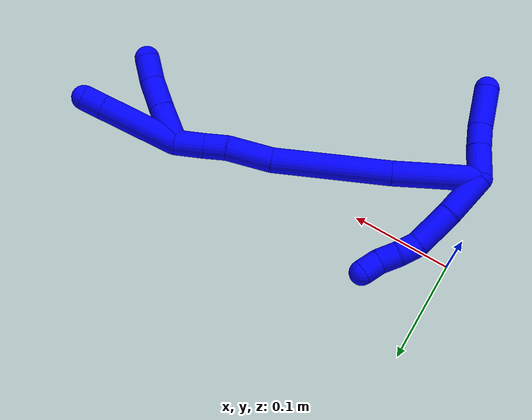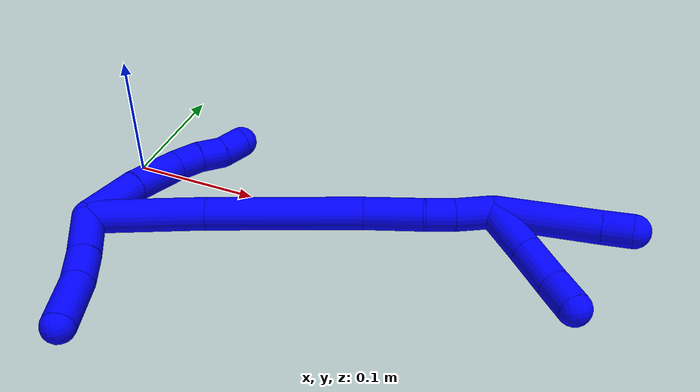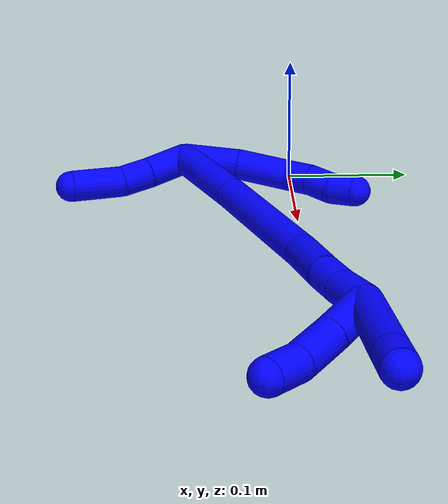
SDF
<sdf version="1.7">
 <world name="default">
  <model name="1">
   <static>0</static>
   <link name="1">
    <collision name="collision-cylinder-e_1_2_8">
     <pose>0.014616 0.011244 0.013679 -0.688008 0.690068 -0.256108</pose>
     <geometry><cylinder><radius>0.0125</radius><length>0.045919</length></cylinder></geometry>
     <surface>
      <friction><ode><mu>1.16</mu><mu2>1.16</mu2><slip1>0</slip1><slip2>0</slip2></ode></friction>
      <contact><ode><kp>1e+06</kp><kd>1</kd><max_vel>0</max_vel><min_depth>0.001</min_depth></ode></contact>
     </surface>
    </collision>
    <visual name="visual-cylinder-e_1_2_8">
     <pose>0.014616 0.011244 0.013679 -0.688008 0.690068 -0.256108</pose>
     <geometry><cylinder><radius>0.0125</radius><length>0.045919</length></cylinder></geometry>
     <material><ambient>0 0 1 1</ambient></material>
    </visual>
    <collision name="collision-cylinder-e_2_8_9">
     <pose>0.043731 0.030781 0.040834 -0.551676 0.741737 -0.219255</pose>
     <geometry><cylinder><radius>0.0125</radius><length>0.042924</length></cylinder></geometry>
     <surface>
      <friction><ode><mu>1.16</mu><mu2>1.16</mu2><slip1>0</slip1><slip2>0</slip2></ode></friction>
      <contact><ode><kp>1e+06</kp><kd>1</kd><max_vel>0</max_vel><min_depth>0.001</min_depth></ode></contact>
     </surface>
    </collision>
    <visual name="visual-cylinder-e_2_8_9">
     <pose>0.043731 0.030781 0.040834 -0.551676 0.741737 -0.219255</pose>
     <geometry><cylinder><radius>0.0125</radius><length>0.042924</length></cylinder></geometry>
     <material><ambient>0 0 1 1</ambient></material>
    </visual>
    <collision name="collision-cylinder-e_3_9_10">
     <pose>0.063075 0.042038 0.062973 -0.329646 0.48667 -0.082538</pose>
     <geometry><cylinder><radius>0.0125</radius><length>0.020718</length></cylinder></geometry>
     <surface>
      <friction><ode><mu>1.16</mu><mu2>1.16</mu2><slip1>0</slip1><slip2>0</slip2></ode></friction>
      <contact><ode><kp>1e+06</kp><kd>1</kd><max_vel>0</max_vel><min_depth>0.001</min_depth></ode></contact>
     </surface>
    </collision>
    <visual name="visual-cylinder-e_3_9_10">
     <pose>0.063075 0.042038 0.062973 -0.329646 0.48667 -0.082538</pose>
     <geometry><cylinder><radius>0.0125</radius><length>0.020718</length></cylinder></geometry>
     <material><ambient>0 0 1 1</ambient></material>
    </visual>
    <collision name="collision-cylinder-e_4_10_11">
     <pose>0.072833 0.04622 0.080473 -0.136974 0.503419 -0.035276</pose>
     <geometry><cylinder><radius>0.0125</radius><length>0.020368</length></cylinder></geometry>
     <surface>
      <friction><ode><mu>1.16</mu><mu2>1.16</mu2><slip1>0</slip1><slip2>0</slip2></ode></friction>
      <contact><ode><kp>1e+06</kp><kd>1</kd><max_vel>0</max_vel><min_depth>0.001</min_depth></ode></contact>
     </surface>
    </collision>
    <visual name="visual-cylinder-e_4_10_11">
     <pose>0.072833 0.04622 0.080473 -0.136974 0.503419 -0.035276</pose>
     <geometry><cylinder><radius>0.0125</radius><length>0.020368</length></cylinder></geometry>
     <material><ambient>0 0 1 1</ambient></material>
    </visual>
    <collision name="collision-cylinder-e_5_11_6">
     <pose>0.082533 0.051454 0.097163 -0.472641 0.497314 -0.122142</pose>
     <geometry><cylinder><radius>0.0125</radius><length>0.02007</length></cylinder></geometry>
     <surface>
      <friction><ode><mu>1.16</mu><mu2>1.16</mu2><slip1>0</slip1><slip2>0</slip2></ode></friction>
      <contact><ode><kp>1e+06</kp><kd>1</kd><max_vel>0</max_vel><min_depth>0.001</min_depth></ode></contact>
     </surface>
    </collision>
    <visual name="visual-cylinder-e_5_11_6">
     <pose>0.082533 0.051454 0.097163 -0.472641 0.497314 -0.122142</pose>
     <geometry><cylinder><radius>0.0125</radius><length>0.02007</length></cylinder></geometry>
     <material><ambient>0 0 1 1</ambient></material>
    </visual>
    <collision name="collision-cylinder-e_1_2_12">
     <pose>-0.008314 -0.014836 -0.000407 1.59819 -0.510645 -0.524196</pose>
     <geometry><cylinder><radius>0.0125</radius><length>0.034023</length></cylinder></geometry>
     <surface>
      <friction><ode><mu>1.16</mu><mu2>1.16</mu2><slip1>0</slip1><slip2>0</slip2></ode></friction>
      <contact><ode><kp>1e+06</kp><kd>1</kd><max_vel>0</max_vel><min_depth>0.001</min_depth></ode></contact>
     </surface>
    </collision>
    <visual name="visual-cylinder-e_1_2_12">
     <pose>-0.008314 -0.014836 -0.000407 1.59819 -0.510645 -0.524196</pose>
     <geometry><cylinder><radius>0.0125</radius><length>0.034023</length></cylinder></geometry>
     <material><ambient>0 0 1 1</ambient></material>
    </visual>
    <collision name="collision-cylinder-e_2_12_13">
     <pose>-0.022901 -0.039755 -0.001883 1.6765 -0.554008 -0.612277</pose>
     <geometry><cylinder><radius>0.0125</radius><length>0.023846</length></cylinder></geometry>
     <surface>
      <friction><ode><mu>1.16</mu><mu2>1.16</mu2><slip1>0</slip1><slip2>0</slip2></ode></friction>
      <contact><ode><kp>1e+06</kp><kd>1</kd><max_vel>0</max_vel><min_depth>0.001</min_depth></ode></contact>
     </surface>
    </collision>
    <visual name="visual-cylinder-e_2_12_13">
     <pose>-0.022901 -0.039755 -0.001883 1.6765 -0.554008 -0.612277</pose>
     <geometry><cylinder><radius>0.0125</radius><length>0.023846</length></cylinder></geometry>
     <material><ambient>0 0 1 1</ambient></material>
    </visual>
    <collision name="collision-cylinder-e_3_13_5">
     <pose>-0.043646 -0.06491 -0.005625 1.74627 -0.757384 -0.886323</pose>
     <geometry><cylinder><radius>0.0125</radius><length>0.042131</length></cylinder></geometry>
     <surface>
      <friction><ode><mu>1.16</mu><mu2>1.16</mu2><slip1>0</slip1><slip2>0</slip2></ode></friction>
      <contact><ode><kp>1e+06</kp><kd>1</kd><max_vel>0</max_vel><min_depth>0.001</min_depth></ode></contact>
     </surface>
    </collision>
    <visual name="visual-cylinder-e_3_13_5">
     <pose>-0.043646 -0.06491 -0.005625 1.74627 -0.757384 -0.886323</pose>
     <geometry><cylinder><radius>0.0125</radius><length>0.042131</length></cylinder></geometry>
     <material><ambient>0 0 1 1</ambient></material>
    </visual>
    <collision name="collision-cylinder-e_1_2_14">
     <pose>0.006854 -0.005976 0.041799 0.142007 0.16091 0.011469</pose>
     <geometry><cylinder><radius>0.0125</radius><length>0.085553</length></cylinder></geometry>
     <surface>
      <friction><ode><mu>1.16</mu><mu2>1.16</mu2><slip1>0</slip1><slip2>0</slip2></ode></friction>
      <contact><ode><kp>1e+06</kp><kd>1</kd><max_vel>0</max_vel><min_depth>0.001</min_depth></ode></contact>
     </surface>
    </collision>
    <visual name="visual-cylinder-e_1_2_14">
     <pose>0.006854 -0.005976 0.041799 0.142007 0.16091 0.011469</pose>
     <geometry><cylinder><radius>0.0125</radius><length>0.085553</length></cylinder></geometry>
     <material><ambient>0 0 1 1</ambient></material>
    </visual>
    <collision name="collision-cylinder-e_2_14_15">
     <pose>0.020891 -0.021881 0.141091 0.17102 0.12251 0.010514</pose>
     <geometry><cylinder><radius>0.0125</radius><length>0.117569</length></cylinder></geometry>
     <surface>
      <friction><ode><mu>1.16</mu><mu2>1.16</mu2><slip1>0</slip1><slip2>0</slip2></ode></friction>
      <contact><ode><kp>1e+06</kp><kd>1</kd><max_vel>0</max_vel><min_depth>0.001</min_depth></ode></contact>
     </surface>
    </collision>
    <visual name="visual-cylinder-e_2_14_15">
     <pose>0.020891 -0.021881 0.141091 0.17102 0.12251 0.010514</pose>
     <geometry><cylinder><radius>0.0125</radius><length>0.117569</length></cylinder></geometry>
     <material><ambient>0 0 1 1</ambient></material>
    </visual>
    <collision name="collision-cylinder-e_3_15_16">
     <pose>0.027355 -0.03666 0.220608 0.216717 -0.031887 -0.003469</pose>
     <geometry><cylinder><radius>0.0125</radius><length>0.045125</length></cylinder></geometry>
     <surface>
      <friction><ode><mu>1.16</mu><mu2>1.16</mu2><slip1>0</slip1><slip2>0</slip2></ode></friction>
      <contact><ode><kp>1e+06</kp><kd>1</kd><max_vel>0</max_vel><min_depth>0.001</min_depth></ode></contact>
     </surface>
    </collision>
    <visual name="visual-cylinder-e_3_15_16">
     <pose>0.027355 -0.03666 0.220608 0.216717 -0.031887 -0.003469</pose>
     <geometry><cylinder><radius>0.0125</radius><length>0.045125</length></cylinder></geometry>
     <material><ambient>0 0 1 1</ambient></material>
    </visual>
    <collision name="collision-cylinder-e_4_16_17">
     <pose>0.02829 -0.04347 0.253623 0.176606 0.147108 0.013047</pose>
     <geometry><cylinder><radius>0.0125</radius><length>0.022574</length></cylinder></geometry>
     <surface>
      <friction><ode><mu>1.16</mu><mu2>1.16</mu2><slip1>0</slip1><slip2>0</slip2></ode></friction>
      <contact><ode><kp>1e+06</kp><kd>1</kd><max_vel>0</max_vel><min_depth>0.001</min_depth></ode></contact>
     </surface>
    </collision>
    <visual name="visual-cylinder-e_4_16_17">
     <pose>0.02829 -0.04347 0.253623 0.176606 0.147108 0.013047</pose>
     <geometry><cylinder><radius>0.0125</radius><length>0.022574</length></cylinder></geometry>
     <material><ambient>0 0 1 1</ambient></material>
    </visual>
    <collision name="collision-cylinder-e_5_17_1">
     <pose>0.031026 -0.046963 0.279082 0.10539 0.074218 0.003916</pose>
     <geometry><cylinder><radius>0.0125</radius><length>0.029178</length></cylinder></geometry>
     <surface>
      <friction><ode><mu>1.16</mu><mu2>1.16</mu2><slip1>0</slip1><slip2>0</slip2></ode></friction>
      <contact><ode><kp>1e+06</kp><kd>1</kd><max_vel>0</max_vel><min_depth>0.001</min_depth></ode></contact>
     </surface>
    </collision>
    <visual name="visual-cylinder-e_5_17_1">
     <pose>0.031026 -0.046963 0.279082 0.10539 0.074218 0.003916</pose>
     <geometry><cylinder><radius>0.0125</radius><length>0.029178</length></cylinder></geometry>
     <material><ambient>0 0 1 1</ambient></material>
    </visual>
    <collision name="collision-cylinder-e_1_1_18">
     <pose>0.023995 -0.065113 0.301358 1.13161 -0.416066 -0.266519</pose>
     <geometry><cylinder><radius>0.0125</radius><length>0.04015</length></cylinder></geometry>
     <surface>
      <friction><ode><mu>1.16</mu><mu2>1.16</mu2><slip1>0</slip1><slip2>0</slip2></ode></friction>
      <contact><ode><kp>1e+06</kp><kd>1</kd><max_vel>0</max_vel><min_depth>0.001</min_depth></ode></contact>
     </surface>
    </collision>
    <visual name="visual-cylinder-e_1_1_18">
     <pose>0.023995 -0.065113 0.301358 1.13161 -0.416066 -0.266519</pose>
     <geometry><cylinder><radius>0.0125</radius><length>0.04015</length></cylinder></geometry>
     <material><ambient>0 0 1 1</ambient></material>
    </visual>
    <collision name="collision-cylinder-e_2_18_19">
     <pose>0.008693 -0.095507 0.315276 1.1533 -0.445065 -0.292244</pose>
     <geometry><cylinder><radius>0.0125</radius><length>0.03339</length></cylinder></geometry>
     <surface>
      <friction><ode><mu>1.16</mu><mu2>1.16</mu2><slip1>0</slip1><slip2>0</slip2></ode></friction>
      <contact><ode><kp>1e+06</kp><kd>1</kd><max_vel>0</max_vel><min_depth>0.001</min_depth></ode></contact>
     </surface>
    </collision>
    <visual name="visual-cylinder-e_2_18_19">
     <pose>0.008693 -0.095507 0.315276 1.1533 -0.445065 -0.292244</pose>
     <geometry><cylinder><radius>0.0125</radius><length>0.03339</length></cylinder></geometry>
     <material><ambient>0 0 1 1</ambient></material>
    </visual>
    <collision name="collision-cylinder-e_3_19_4">
     <pose>-0.006579 -0.118935 0.325442 1.173 -0.657502 -0.445828</pose>
     <geometry><cylinder><radius>0.0125</radius><length>0.02646</length></cylinder></geometry>
     <surface>
      <friction><ode><mu>1.16</mu><mu2>1.16</mu2><slip1>0</slip1><slip2>0</slip2></ode></friction>
      <contact><ode><kp>1e+06</kp><kd>1</kd><max_vel>0</max_vel><min_depth>0.001</min_depth></ode></contact>
     </surface>
    </collision>
    <visual name="visual-cylinder-e_3_19_4">
     <pose>-0.006579 -0.118935 0.325442 1.173 -0.657502 -0.445828</pose>
     <geometry><cylinder><radius>0.0125</radius><length>0.02646</length></cylinder></geometry>
     <material><ambient>0 0 1 1</ambient></material>
    </visual>
    <collision name="collision-cylinder-e_1_1_20">
     <pose>0.025533 -0.061982 0.329623 0.357828 -0.169095 -0.030651</pose>
     <geometry><cylinder><radius>0.0125</radius><length>0.078139</length></cylinder></geometry>
     <surface>
      <friction><ode><mu>1.16</mu><mu2>1.16</mu2><slip1>0</slip1><slip2>0</slip2></ode></friction>
      <contact><ode><kp>1e+06</kp><kd>1</kd><max_vel>0</max_vel><min_depth>0.001</min_depth></ode></contact>
     </surface>
    </collision>
    <visual name="visual-cylinder-e_1_1_20">
     <pose>0.025533 -0.061982 0.329623 0.357828 -0.169095 -0.030651</pose>
     <geometry><cylinder><radius>0.0125</radius><length>0.078139</length></cylinder></geometry>
     <material><ambient>0 0 1 1</ambient></material>
    </visual>
    <collision name="collision-cylinder-e_2_20_3">
     <pose>0.016956 -0.079102 0.375809 0.344811 -0.184165 -0.032158</pose>
     <geometry><cylinder><radius>0.0125</radius><length>0.021861</length></cylinder></geometry>
     <surface>
      <friction><ode><mu>1.16</mu><mu2>1.16</mu2><slip1>0</slip1><slip2>0</slip2></ode></friction>
      <contact><ode><kp>1e+06</kp><kd>1</kd><max_vel>0</max_vel><min_depth>0.001</min_depth></ode></contact>
     </surface>
    </collision>
    <visual name="visual-cylinder-e_2_20_3">
     <pose>0.016956 -0.079102 0.375809 0.344811 -0.184165 -0.032158</pose>
     <geometry><cylinder><radius>0.0125</radius><length>0.021861</length></cylinder></geometry>
     <material><ambient>0 0 1 1</ambient></material>
    </visual>
    <collision name="collision-sphere-3">
     <pose>0.014955 -0.082735 0.385923 0 -0 0</pose>
     <geometry><sphere><radius>0.0125</radius></sphere></geometry>
     <surface>
      <friction><ode><mu>1.16</mu><mu2>1.16</mu2><slip1>0</slip1><slip2>0</slip2></ode></friction>
      <contact><ode><kp>1e+06</kp><kd>1</kd><max_vel>0</max_vel><min_depth>0.001</min_depth></ode></contact>
     </surface>
    </collision>
    <visual name="visual-sphere-3">
     <pose>0.014955 -0.082735 0.385923 0 -0 0</pose>
     <geometry><sphere><radius>0.0125</radius></sphere></geometry>
     <material><ambient>0 0 1 1</ambient></material>
    </visual>
    <collision name="collision-sphere-20">
     <pose>0.018958 -0.07547 0.365696 0 -0 0</pose>
     <geometry><sphere><radius>0.0125</radius></sphere></geometry>
     <surface>
      <friction><ode><mu>1.16</mu><mu2>1.16</mu2><slip1>0</slip1><slip2>0</slip2></ode></friction>
      <contact><ode><kp>1e+06</kp><kd>1</kd><max_vel>0</max_vel><min_depth>0.001</min_depth></ode></contact>
     </surface>
    </collision>
    <visual name="visual-sphere-20">
     <pose>0.018958 -0.07547 0.365696 0 -0 0</pose>
     <geometry><sphere><radius>0.0125</radius></sphere></geometry>
     <material><ambient>0 0 1 1</ambient></material>
    </visual>
    <collision name="collision-sphere-4">
     <pose>-0.014665 -0.128589 0.329499 0 -0 0</pose>
     <geometry><sphere><radius>0.0125</radius></sphere></geometry>
     <surface>
      <friction><ode><mu>1.16</mu><mu2>1.16</mu2><slip1>0</slip1><slip2>0</slip2></ode></friction>
      <contact><ode><kp>1e+06</kp><kd>1</kd><max_vel>0</max_vel><min_depth>0.001</min_depth></ode></contact>
     </surface>
    </collision>
    <visual name="visual-sphere-4">
     <pose>-0.014665 -0.128589 0.329499 0 -0 0</pose>
     <geometry><sphere><radius>0.0125</radius></sphere></geometry>
     <material><ambient>0 0 1 1</ambient></material>
    </visual>
    <collision name="collision-sphere-6">
     <pose>0.087321 0.055469 0.105016 0 -0 0</pose>
     <geometry><sphere><radius>0.0125</radius></sphere></geometry>
     <surface>
      <friction><ode><mu>1.16</mu><mu2>1.16</mu2><slip1>0</slip1><slip2>0</slip2></ode></friction>
      <contact><ode><kp>1e+06</kp><kd>1</kd><max_vel>0</max_vel><min_depth>0.001</min_depth></ode></contact>
     </surface>
    </collision>
    <visual name="visual-sphere-6">
     <pose>0.087321 0.055469 0.105016 0 -0 0</pose>
     <geometry><sphere><radius>0.0125</radius></sphere></geometry>
     <material><ambient>0 0 1 1</ambient></material>
    </visual>
    <collision name="collision-sphere-11">
     <pose>0.077746 0.047439 0.08931 0 -0 0</pose>
     <geometry><sphere><radius>0.0125</radius></sphere></geometry>
     <surface>
      <friction><ode><mu>1.16</mu><mu2>1.16</mu2><slip1>0</slip1><slip2>0</slip2></ode></friction>
      <contact><ode><kp>1e+06</kp><kd>1</kd><max_vel>0</max_vel><min_depth>0.001</min_depth></ode></contact>
     </surface>
    </collision>
    <visual name="visual-sphere-11">
     <pose>0.077746 0.047439 0.08931 0 -0 0</pose>
     <geometry><sphere><radius>0.0125</radius></sphere></geometry>
     <material><ambient>0 0 1 1</ambient></material>
    </visual>
    <collision name="collision-sphere-10">
     <pose>0.06792 0.045002 0.071637 0 -0 0</pose>
     <geometry><sphere><radius>0.0125</radius></sphere></geometry>
     <surface>
      <friction><ode><mu>1.16</mu><mu2>1.16</mu2><slip1>0</slip1><slip2>0</slip2></ode></friction>
      <contact><ode><kp>1e+06</kp><kd>1</kd><max_vel>0</max_vel><min_depth>0.001</min_depth></ode></contact>
     </surface>
    </collision>
    <visual name="visual-sphere-10">
     <pose>0.06792 0.045002 0.071637 0 -0 0</pose>
     <geometry><sphere><radius>0.0125</radius></sphere></geometry>
     <material><ambient>0 0 1 1</ambient></material>
    </visual>
    <collision name="collision-sphere-9">
     <pose>0.05823 0.039075 0.05431 0 -0 0</pose>
     <geometry><sphere><radius>0.0125</radius></sphere></geometry>
     <surface>
      <friction><ode><mu>1.16</mu><mu2>1.16</mu2><slip1>0</slip1><slip2>0</slip2></ode></friction>
      <contact><ode><kp>1e+06</kp><kd>1</kd><max_vel>0</max_vel><min_depth>0.001</min_depth></ode></contact>
     </surface>
    </collision>
    <visual name="visual-sphere-9">
     <pose>0.05823 0.039075 0.05431 0 -0 0</pose>
     <geometry><sphere><radius>0.0125</radius></sphere></geometry>
     <material><ambient>0 0 1 1</ambient></material>
    </visual>
    <collision name="collision-sphere-2">
     <geometry><sphere><radius>0.0125</radius></sphere></geometry>
     <surface>
      <friction><ode><mu>1.16</mu><mu2>1.16</mu2><slip1>0</slip1><slip2>0</slip2></ode></friction>
      <contact><ode><kp>1e+06</kp><kd>1</kd><max_vel>0</max_vel><min_depth>0.001</min_depth></ode></contact>
     </surface>
    </collision>
    <visual name="visual-sphere-2">
     <geometry><sphere><radius>0.0125</radius></sphere></geometry>
     <material><ambient>0 0 1 1</ambient></material>
    </visual>
    <collision name="collision-sphere-19">
     <pose>0.001506 -0.109281 0.321386 0 -0 0</pose>
     <geometry><sphere><radius>0.0125</radius></sphere></geometry>
     <surface>
      <friction><ode><mu>1.16</mu><mu2>1.16</mu2><slip1>0</slip1><slip2>0</slip2></ode></friction>
      <contact><ode><kp>1e+06</kp><kd>1</kd><max_vel>0</max_vel><min_depth>0.001</min_depth></ode></contact>
     </surface>
    </collision>
    <visual name="visual-sphere-19">
     <pose>0.001506 -0.109281 0.321386 0 -0 0</pose>
     <geometry><sphere><radius>0.0125</radius></sphere></geometry>
     <material><ambient>0 0 1 1</ambient></material>
    </visual>
    <collision name="collision-sphere-8">
     <pose>0.029232 0.022487 0.027357 0 -0 0</pose>
     <geometry><sphere><radius>0.0125</radius></sphere></geometry>
     <surface>
      <friction><ode><mu>1.16</mu><mu2>1.16</mu2><slip1>0</slip1><slip2>0</slip2></ode></friction>
      <contact><ode><kp>1e+06</kp><kd>1</kd><max_vel>0</max_vel><min_depth>0.001</min_depth></ode></contact>
     </surface>
    </collision>
    <visual name="visual-sphere-8">
     <pose>0.029232 0.022487 0.027357 0 -0 0</pose>
     <geometry><sphere><radius>0.0125</radius></sphere></geometry>
     <material><ambient>0 0 1 1</ambient></material>
    </visual>
    <collision name="collision-sphere-12">
     <pose>-0.016629 -0.029672 -0.000813 0 -0 0</pose>
     <geometry><sphere><radius>0.0125</radius></sphere></geometry>
     <surface>
      <friction><ode><mu>1.16</mu><mu2>1.16</mu2><slip1>0</slip1><slip2>0</slip2></ode></friction>
      <contact><ode><kp>1e+06</kp><kd>1</kd><max_vel>0</max_vel><min_depth>0.001</min_depth></ode></contact>
     </surface>
    </collision>
    <visual name="visual-sphere-12">
     <pose>-0.016629 -0.029672 -0.000813 0 -0 0</pose>
     <geometry><sphere><radius>0.0125</radius></sphere></geometry>
     <material><ambient>0 0 1 1</ambient></material>
    </visual>
    <collision name="collision-sphere-13">
     <pose>-0.029174 -0.049838 -0.002953 0 -0 0</pose>
     <geometry><sphere><radius>0.0125</radius></sphere></geometry>
     <surface>
      <friction><ode><mu>1.16</mu><mu2>1.16</mu2><slip1>0</slip1><slip2>0</slip2></ode></friction>
      <contact><ode><kp>1e+06</kp><kd>1</kd><max_vel>0</max_vel><min_depth>0.001</min_depth></ode></contact>
     </surface>
    </collision>
    <visual name="visual-sphere-13">
     <pose>-0.029174 -0.049838 -0.002953 0 -0 0</pose>
     <geometry><sphere><radius>0.0125</radius></sphere></geometry>
     <material><ambient>0 0 1 1</ambient></material>
    </visual>
    <collision name="collision-sphere-5">
     <pose>-0.058119 -0.079981 -0.008297 0 -0 0</pose>
     <geometry><sphere><radius>0.0125</radius></sphere></geometry>
     <surface>
      <friction><ode><mu>1.16</mu><mu2>1.16</mu2><slip1>0</slip1><slip2>0</slip2></ode></friction>
      <contact><ode><kp>1e+06</kp><kd>1</kd><max_vel>0</max_vel><min_depth>0.001</min_depth></ode></contact>
     </surface>
    </collision>
    <visual name="visual-sphere-5">
     <pose>-0.058119 -0.079981 -0.008297 0 -0 0</pose>
     <geometry><sphere><radius>0.0125</radius></sphere></geometry>
     <material><ambient>0 0 1 1</ambient></material>
    </visual>
    <collision name="collision-sphere-14">
     <pose>0.013707 -0.011952 0.083598 0 -0 0</pose>
     <geometry><sphere><radius>0.0125</radius></sphere></geometry>
     <surface>
      <friction><ode><mu>1.16</mu><mu2>1.16</mu2><slip1>0</slip1><slip2>0</slip2></ode></friction>
      <contact><ode><kp>1e+06</kp><kd>1</kd><max_vel>0</max_vel><min_depth>0.001</min_depth></ode></contact>
     </surface>
    </collision>
    <visual name="visual-sphere-14">
     <pose>0.013707 -0.011952 0.083598 0 -0 0</pose>
     <geometry><sphere><radius>0.0125</radius></sphere></geometry>
     <material><ambient>0 0 1 1</ambient></material>
    </visual>
    <collision name="collision-sphere-15">
     <pose>0.028074 -0.031811 0.198584 0 -0 0</pose>
     <geometry><sphere><radius>0.0125</radius></sphere></geometry>
     <surface>
      <friction><ode><mu>1.16</mu><mu2>1.16</mu2><slip1>0</slip1><slip2>0</slip2></ode></friction>
      <contact><ode><kp>1e+06</kp><kd>1</kd><max_vel>0</max_vel><min_depth>0.001</min_depth></ode></contact>
     </surface>
    </collision>
    <visual name="visual-sphere-15">
     <pose>0.028074 -0.031811 0.198584 0 -0 0</pose>
     <geometry><sphere><radius>0.0125</radius></sphere></geometry>
     <material><ambient>0 0 1 1</ambient></material>
    </visual>
    <collision name="collision-sphere-16">
     <pose>0.026636 -0.041509 0.242631 0 -0 0</pose>
     <geometry><sphere><radius>0.0125</radius></sphere></geometry>
     <surface>
      <friction><ode><mu>1.16</mu><mu2>1.16</mu2><slip1>0</slip1><slip2>0</slip2></ode></friction>
      <contact><ode><kp>1e+06</kp><kd>1</kd><max_vel>0</max_vel><min_depth>0.001</min_depth></ode></contact>
     </surface>
    </collision>
    <visual name="visual-sphere-16">
     <pose>0.026636 -0.041509 0.242631 0 -0 0</pose>
     <geometry><sphere><radius>0.0125</radius></sphere></geometry>
     <material><ambient>0 0 1 1</ambient></material>
    </visual>
    <collision name="collision-sphere-17">
     <pose>0.029945 -0.045432 0.264614 0 -0 0</pose>
     <geometry><sphere><radius>0.0125</radius></sphere></geometry>
     <surface>
      <friction><ode><mu>1.16</mu><mu2>1.16</mu2><slip1>0</slip1><slip2>0</slip2></ode></friction>
      <contact><ode><kp>1e+06</kp><kd>1</kd><max_vel>0</max_vel><min_depth>0.001</min_depth></ode></contact>
     </surface>
    </collision>
    <visual name="visual-sphere-17">
     <pose>0.029945 -0.045432 0.264614 0 -0 0</pose>
     <geometry><sphere><radius>0.0125</radius></sphere></geometry>
     <material><ambient>0 0 1 1</ambient></material>
    </visual>
    <collision name="collision-sphere-1">
     <pose>0.032108 -0.048493 0.29355 0 -0 0</pose>
     <geometry><sphere><radius>0.0125</radius></sphere></geometry>
     <surface>
      <friction><ode><mu>1.16</mu><mu2>1.16</mu2><slip1>0</slip1><slip2>0</slip2></ode></friction>
      <contact><ode><kp>1e+06</kp><kd>1</kd><max_vel>0</max_vel><min_depth>0.001</min_depth></ode></contact>
     </surface>
    </collision>
    <visual name="visual-sphere-1">
     <pose>0.032108 -0.048493 0.29355 0 -0 0</pose>
     <geometry><sphere><radius>0.0125</radius></sphere></geometry>
     <material><ambient>0 0 1 1</ambient></material>
    </visual>
    <collision name="collision-sphere-18">
     <pose>0.015881 -0.081733 0.309166 0 -0 0</pose>
     <geometry><sphere><radius>0.0125</radius></sphere></geometry>
     <surface>
      <friction><ode><mu>1.16</mu><mu2>1.16</mu2><slip1>0</slip1><slip2>0</slip2></ode></friction>
      <contact><ode><kp>1e+06</kp><kd>1</kd><max_vel>0</max_vel><min_depth>0.001</min_depth></ode></contact>
     </surface>
    </collision>
    <visual name="visual-sphere-18">
     <pose>0.015881 -0.081733 0.309166 0 -0 0</pose>
     <geometry><sphere><radius>0.0125</radius></sphere></geometry>
     <material><ambient>0 0 1 1</ambient></material>
    </visual>
    <inertial>
     <pose>0.018124 -0.02949 0.154902 0 -0 0</pose>
     <mass>0.75</mass>
     <inertia>
      <ixx>0.000275</ixx>
      <ixy>0</ixy>
      <ixz>0</ixz>
      <iyy>0.000253</iyy>
      <iyz>0</iyz>
      <izz>8.6e-05</izz>
     </inertia>
    </inertial>
   </link>
   <pose>0.012728 -0.088197 0.021996 1.27999 0.841739 1.80288</pose>
  </model>
 </world>
</sdf>
